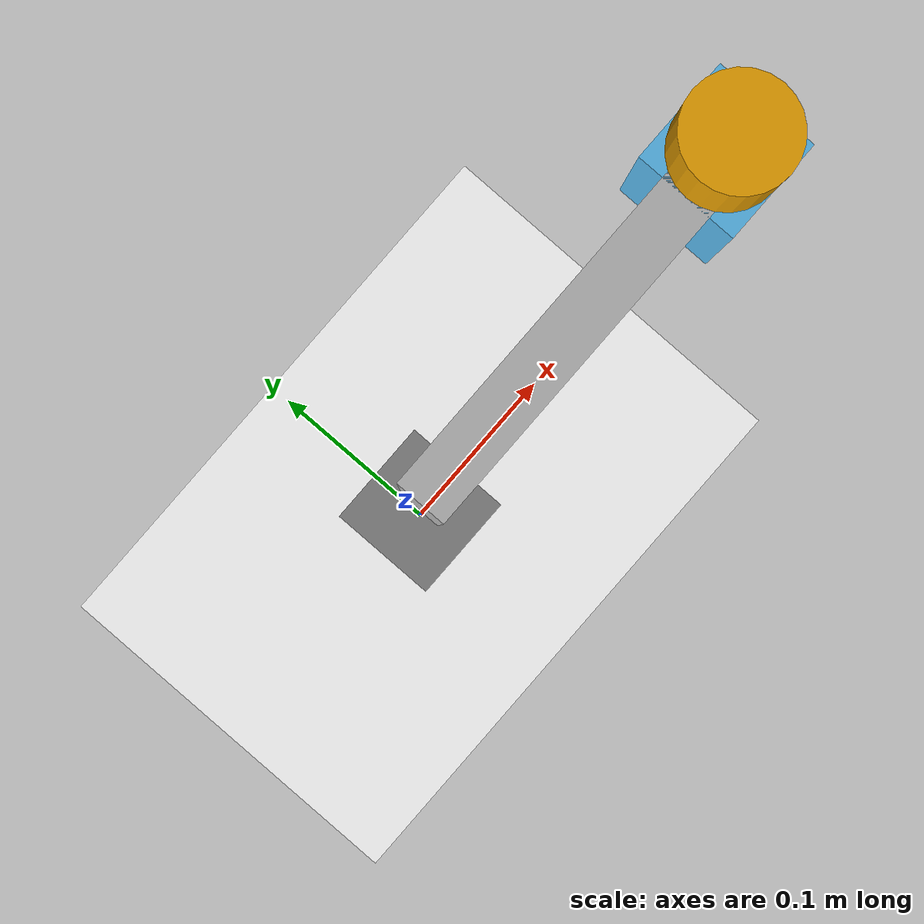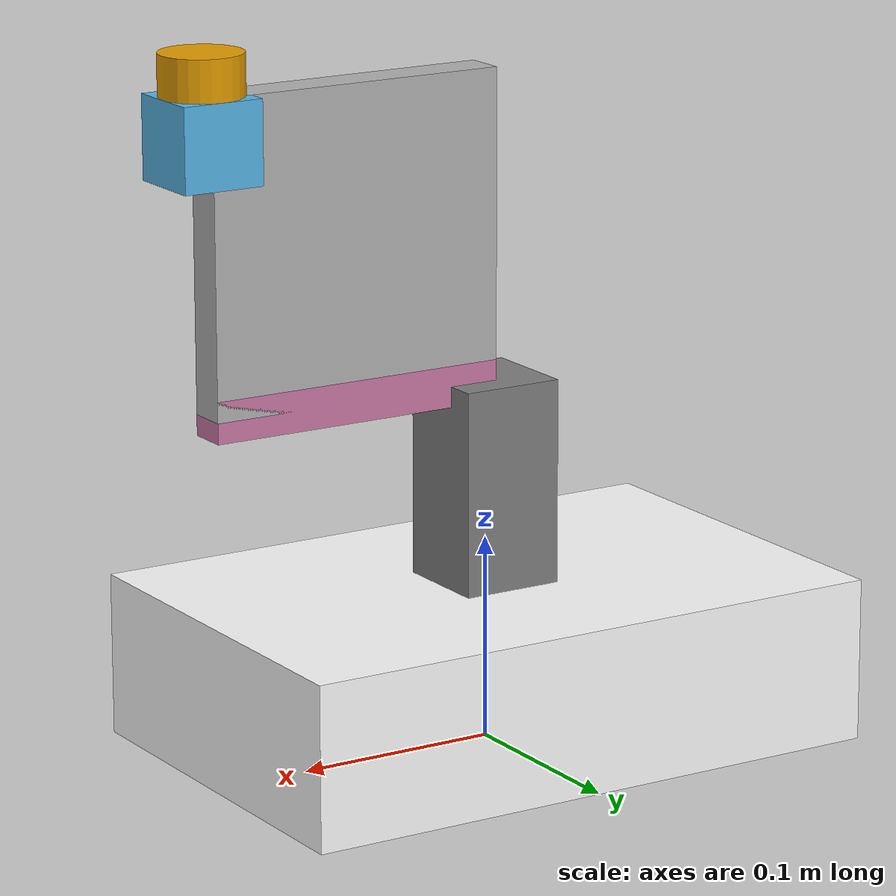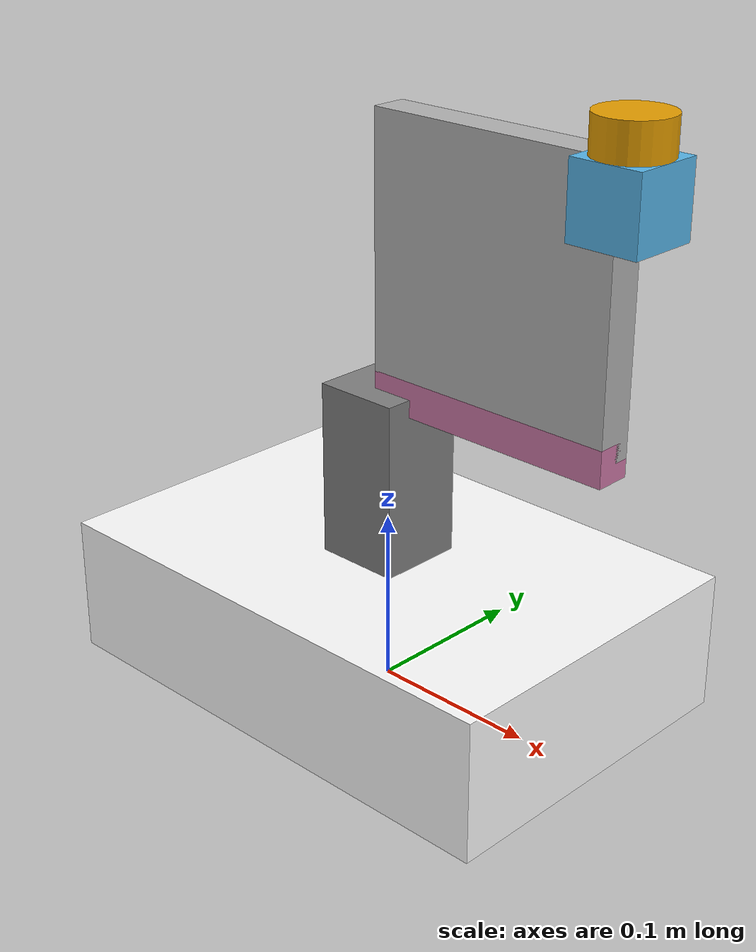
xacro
<?xml version="1.0"?>
<robot xmlns:xacro="http://www.ros.org/wiki/xacro" name="rak">

  <!-- ================= Constants ================= -->
  <xacro:property name="chassis_length" value="0.30"/>
  <xacro:property name="chassis_width"  value="0.20"/>
  <xacro:property name="chassis_height" value="0.08"/>
  <xacro:property name="chassis_mass"   value="3.0"/>
  <xacro:property name="wheel_radius"   value="0.03"/>
  <xacro:property name="wheel_thickness" value="0.02"/>
  <xacro:property name="wheel_mass"     value="0.1"/>
  <xacro:property name="arm_base_height" value="0.10"/>

  <!-- ================= Base link ================= -->
  <link name="base_link">
    <visual>
      <origin xyz="0 0 ${chassis_height/2}" rpy="0 0 0"/>
      <geometry>
        <box size="${chassis_length} ${chassis_width} ${chassis_height}"/>
      </geometry>
      <material name="white">
        <color rgba="1 1 1 1"/>
      </material>
    </visual>
    <collision>
      <origin xyz="0 0 ${chassis_height/2}" rpy="0 0 0"/>
      <geometry>
        <box size="${chassis_length} ${chassis_width} ${chassis_height}"/>
      </geometry>
    </collision>
    <inertial>
      <origin xyz="0 0 ${chassis_height/2}" rpy="0 0 0"/>
      <mass value="${chassis_mass}"/>
      <inertia ixx="${chassis_mass*(chassis_width**2 + chassis_height**2)/12}" ixy="0" ixz="0"
               iyy="${chassis_mass*(chassis_length**2 + chassis_height**2)/12}" iyz="0"
               izz="${chassis_mass*(chassis_length**2 + chassis_width**2)/12}"/>
    </inertial>
  </link>

  <!-- ================= 4 mecanum wheels (M1-M4, O layout) ================= -->
  <xacro:macro name="mecanum_wheel" params="name x y">
    <link name="${name}">
      <visual>
        <origin xyz="0 0 0" rpy="${pi/2} 0 0"/>
        <geometry>
          <cylinder radius="${wheel_radius}" length="${wheel_thickness}"/>
        </geometry>
        <material name="black">
          <color rgba="0.1 0.1 0.1 1"/>
        </material>
      </visual>
      <collision>
        <origin xyz="0 0 0" rpy="${pi/2} 0 0"/>
        <geometry>
          <cylinder radius="${wheel_radius}" length="${wheel_thickness}"/>
        </geometry>
      </collision>
      <inertial>
        <origin xyz="0 0 0" rpy="${pi/2} 0 0"/>
        <mass value="${wheel_mass}"/>
        <inertia ixx="${wheel_mass*wheel_radius**2/2}" ixy="0" ixz="0"
                 iyy="${wheel_mass*wheel_radius**2/4}" iyz="0"
                 izz="${wheel_mass*wheel_radius**2/4}"/>
      </inertial>
    </link>
    <joint name="${name}_joint" type="continuous">
      <parent link="base_link"/>
      <child link="${name}"/>
      <origin xyz="${x} ${y} ${wheel_radius}" rpy="0 0 0"/>
      <axis xyz="0 1 0"/>
    </joint>
  </xacro:macro>
  <xacro:mecanum_wheel name="wheel_m1" x="${chassis_length/2 - 0.04}" y="${-chassis_width/2 + 0.04}"/>
  <xacro:mecanum_wheel name="wheel_m2" x="${chassis_length/2 - 0.04}" y="${chassis_width/2 - 0.04}"/>
  <xacro:mecanum_wheel name="wheel_m3" x="${-chassis_length/2 + 0.04}" y="${chassis_width/2 - 0.04}"/>
  <xacro:mecanum_wheel name="wheel_m4" x="${-chassis_length/2 + 0.04}" y="${-chassis_width/2 + 0.04}"/>

  <!-- ================= Arm base (M6 + stepper 3 carrier) ================= -->
  <link name="arm_base_link">
    <visual>
      <origin xyz="0 0 0.05" rpy="0 0 0"/>
      <geometry>
        <box size="0.05 0.05 0.10"/>
      </geometry>
      <material name="gray">
        <color rgba="0.5 0.5 0.5 1"/>
      </material>
    </visual>
  </link>
  <joint name="arm_base_joint" type="fixed">
    <parent link="base_link"/>
    <child link="arm_base_link"/>
    <origin xyz="0 0 ${chassis_height}"/>
  </joint>

  <!-- M6: horizontal slide (prismatic) -->
  <link name="arm_horiz_link">
    <visual>
      <origin xyz="0.075 0 0" rpy="0 0 0"/>
      <geometry>
        <box size="0.15 0.02 0.02"/>
      </geometry>
    </visual>
  </link>
  <joint name="arm_horiz_joint" type="prismatic">
    <parent link="arm_base_link"/>
    <child link="arm_horiz_link"/>
    <origin xyz="0 0 0.10" rpy="0 0 0"/>
    <axis xyz="1 0 0"/>
    <limit lower="0" upper="0.3" effort="10" velocity="0.2"/>
  </joint>

  <!-- Stepper 3: vertical slide (prismatic) -->
  <link name="arm_vert_link">
    <visual>
      <origin xyz="0.075 0 0.075" rpy="0 0 0"/>
      <geometry>
        <box size="0.15 0.02 0.15"/>
      </geometry>
    </visual>
  </link>
  <joint name="arm_vert_joint" type="prismatic">
    <parent link="arm_horiz_link"/>
    <child link="arm_vert_link"/>
    <axis xyz="0 0 1"/>
    <limit lower="0" upper="0.3" effort="10" velocity="0.04"/>
  </joint>

  <!-- S3: hand rotate (continuous) -->
  <link name="arm_hand_rotate_link">
    <visual>
      <origin xyz="0 0 0" rpy="0 0 0"/>
      <geometry>
        <cylinder radius="0.02" length="0.04"/>
      </geometry>
    </visual>
  </link>
  <joint name="arm_hand_rotate_joint" type="continuous">
    <parent link="arm_vert_link"/>
    <child link="arm_hand_rotate_link"/>
    <origin xyz="0.15 0 0.15" rpy="0 0 0"/>
    <axis xyz="0 0 1"/>
  </joint>

  <!-- S7: hand grip (continuous, 270 deg mode) -->
  <link name="arm_hand_grip_link">
    <visual>
      <origin xyz="0 0 -0.02" rpy="0 0 0"/>
      <geometry>
        <box size="0.04 0.04 0.04"/>
      </geometry>
    </visual>
  </link>
  <joint name="arm_hand_grip_joint" type="revolute">
    <parent link="arm_hand_rotate_link"/>
    <child link="arm_hand_grip_link"/>
    <axis xyz="0 1 0"/>
    <limit lower="${-45*pi/180}" upper="${46*pi/180}" effort="1" velocity="1"/>
  </joint>

  <!-- ================= Sensors ================= -->
  <!-- Front camera (/dev/cam2) -->
  <link name="camera_front_link"/>
  <joint name="camera_front_joint" type="fixed">
    <parent link="base_link"/>
    <child link="camera_front_link"/>
    <origin xyz="${chassis_length/2 - 0.01} 0 ${chassis_height/2}" rpy="0 0 0"/>
  </joint>
  <!-- Optical frame: convention x→right, y→down, z→forward -->
  <link name="camera_front_optical"/>
  <joint name="camera_front_optical_joint" type="fixed">
    <parent link="camera_front_link"/>
    <child link="camera_front_optical"/>
    <origin xyz="0 0 0" rpy="${-pi/2} 0 ${-pi/2}"/>
  </joint>

  <!-- Arm camera (/dev/cam1) -->
  <link name="camera_arm_link"/>
  <joint name="camera_arm_joint" type="fixed">
    <parent link="base_link"/>
    <child link="camera_arm_link"/>
    <origin xyz="0 ${chassis_width/2 - 0.01} ${chassis_height/2}" rpy="0 0 ${pi/2}"/>
  </joint>
  <link name="camera_arm_optical"/>
  <joint name="camera_arm_optical_joint" type="fixed">
    <parent link="camera_arm_link"/>
    <child link="camera_arm_optical"/>
    <origin xyz="0 0 0" rpy="${-pi/2} 0 ${-pi/2}"/>
  </joint>

  <!-- IR sensors: P8 left, P7 right per hardware-port-mapping.md -->
  <link name="ir_left_link"/>
  <joint name="ir_left_joint" type="fixed">
    <parent link="base_link"/>
    <child link="ir_left_link"/>
    <origin xyz="0 ${chassis_width/2 - 0.02} ${chassis_height/2}" rpy="0 0 0"/>
  </joint>
  <link name="ir_right_link"/>
  <joint name="ir_right_joint" type="fixed">
    <parent link="base_link"/>
    <child link="ir_right_link"/>
    <origin xyz="0 ${-chassis_width/2 + 0.02} ${chassis_height/2}" rpy="0 0 0"/>
  </joint>

  <!-- ================= ros2_control hardware interface ================= -->
  <ros2_control name="MC602" type="system">
    <hardware>
      <plugin>hardware/MC602HardwareInterface</plugin>
      <param name="mc602_transport">bridge</param>
      <param name="serial_port">/dev/ttyUSB0</param>
      <param name="baud">1000000</param>
    </hardware>
    <joint name="wheel_m1_joint">
      <command_interface name="velocity"/>
      <state_interface name="position"/>
      <state_interface name="velocity"/>
    </joint>
    <joint name="wheel_m2_joint">
      <command_interface name="velocity"/>
      <state_interface name="position"/>
      <state_interface name="velocity"/>
    </joint>
    <joint name="wheel_m3_joint">
      <command_interface name="velocity"/>
      <state_interface name="position"/>
      <state_interface name="velocity"/>
    </joint>
    <joint name="wheel_m4_joint">
      <command_interface name="velocity"/>
      <state_interface name="position"/>
      <state_interface name="velocity"/>
    </joint>
    <joint name="arm_horiz_joint">
      <command_interface name="position"/>
      <state_interface name="position"/>
    </joint>
    <joint name="arm_vert_joint">
      <command_interface name="position"/>
      <state_interface name="position"/>
    </joint>
    <joint name="arm_hand_rotate_joint">
      <command_interface name="position"/>
      <state_interface name="position"/>
    </joint>
    <joint name="arm_hand_grip_joint">
      <command_interface name="position"/>
      <state_interface name="position"/>
    </joint>
  </ros2_control>

</robot>
